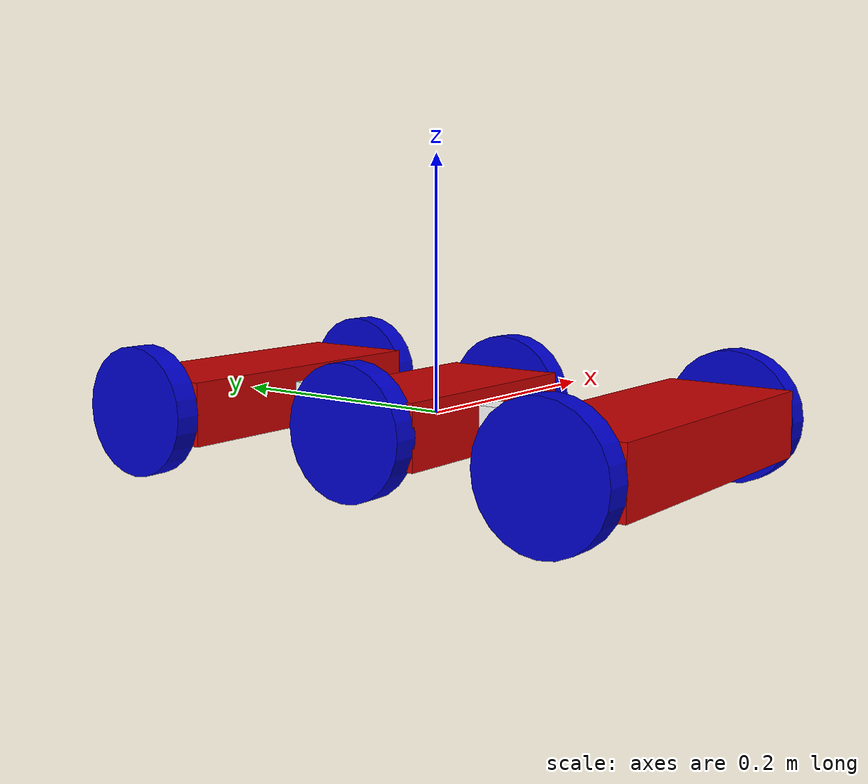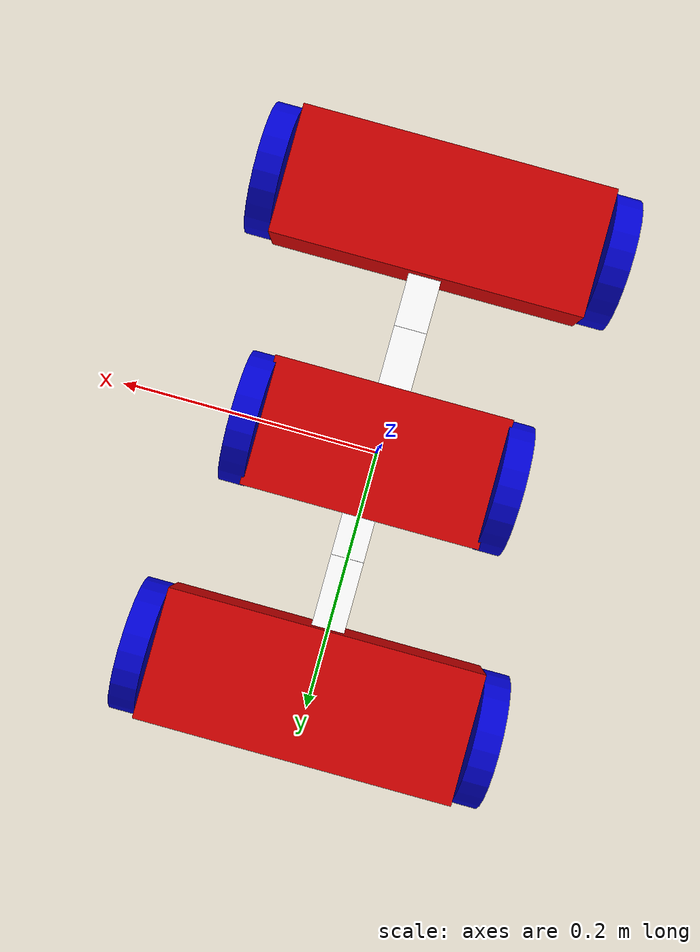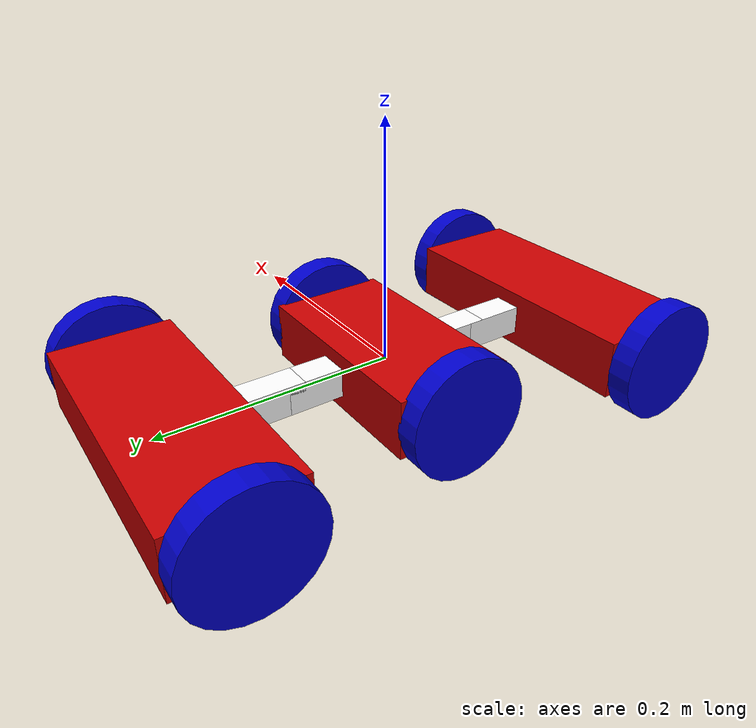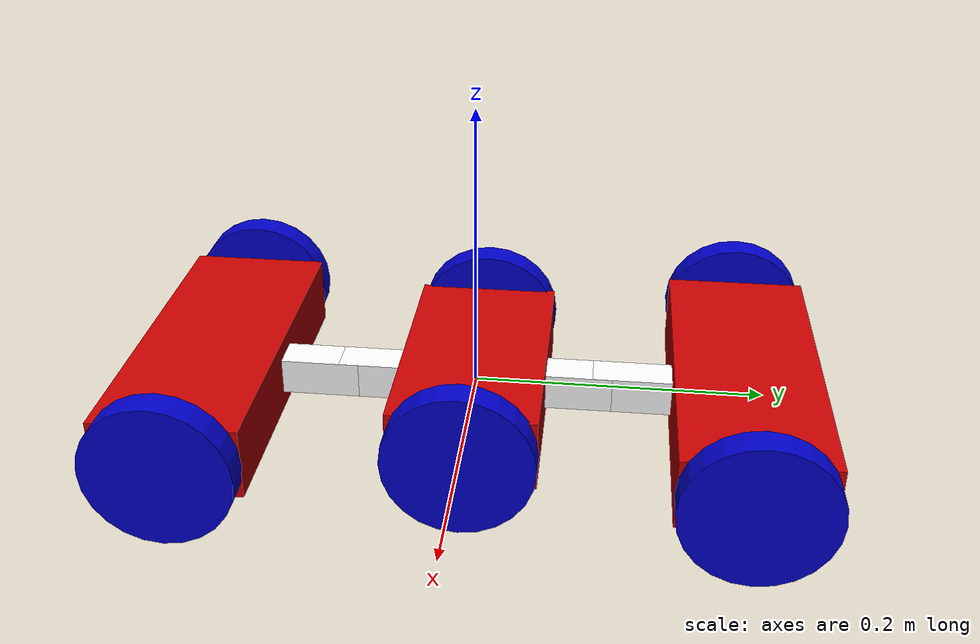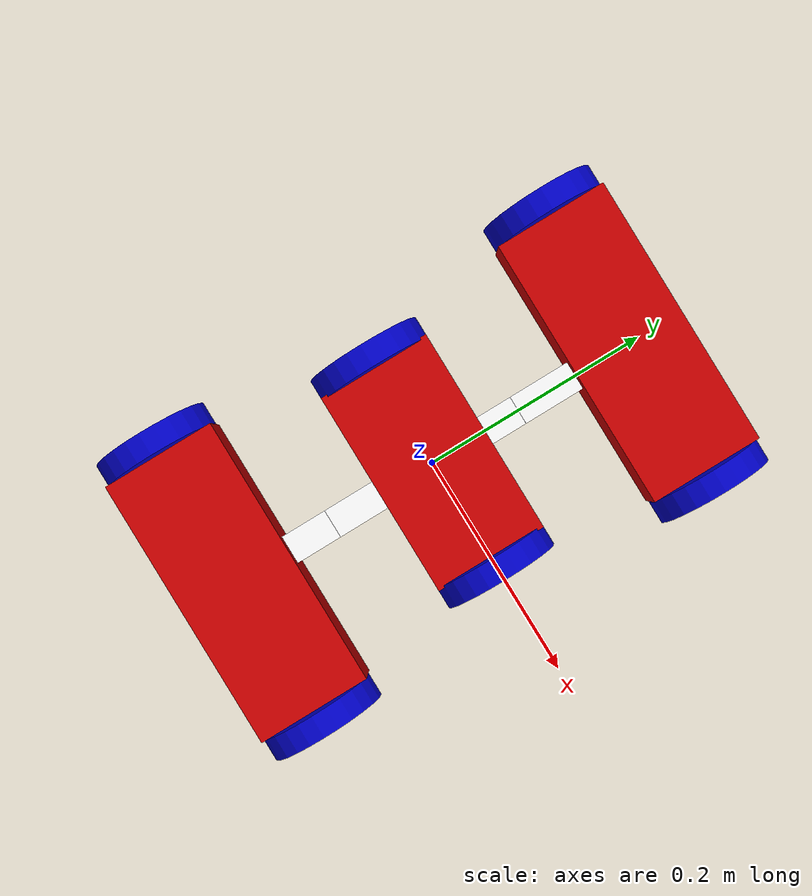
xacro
<?xml version="1.0"?>
<robot xmlns:xacro="http://www.ros.org/wiki/xacro" name="wallcrawler3">
    <!-- Define material (colors) -->
    <material name="blue">
        <color rgba="0 0 0.8 1"/>
    </material>

    <material name="white">
        <color rgba="1 1 1 1"/>
    </material>

    <material name="black">
        <color rgba="0.2 0.2 0.2 1"/>
    </material>

    <material name="red">
        <color rgba="0.8 0 0 1"/>
    </material>

    <!-- Define base link (Choosing center segment) -->
    <link name="base_link">
        <visual>
        <geometry>
            <box size="0.184 0.1 0.05"/>
        </geometry>
        <material name="red"/>
        </visual>
        <collision>
        <geometry>
            <box size="0.184 0.1 0.05"/>
        </geometry>
        </collision>
        <inertial>
        <mass value="0.29"/>
        <inertia ixx="0.001483683" ixy="0.0" ixz="0.00" iyy="0.0004067691" iyz="0.00" izz="0.0011120307"/>
        </inertial>
    </link>

    <!-- Wheels attached to base/central link -->
    <link name="center_right_wheel">
        <visual>
        <geometry>
            <cylinder length="0.02" radius="0.051"/>
        </geometry>
        <origin rpy="0 1.57 0" xyz="0 0.0 0.0"/>
        <material name="blue"/>
        </visual>
        <collision>
      <geometry>
            <cylinder length="0.02" radius="0.051"/>
        </geometry>
        <origin rpy="0 1.57 0" xyz="0 0.0 0.0"/>
        </collision>
        <inertial>
        <origin rpy="0 1.57 0" xyz="0 0.0 0.0"/>
        <mass value="0.57"/>
        <inertia ixx="0.0004272539" ixy="0" ixz="0" iyy="0.000804759" iyz="0.00" izz="0.0004272539"/>
        </inertial>
    </link>

    <joint name="center_right_wheel_joint" type="continuous">
        <axis xyz="1 0 0" rpy="0 0 0"/>
        <parent link="base_link"/>
        <child link="center_right_wheel"/>
        <origin xyz="0.1 0.0 0.0"/>
    </joint>

    <gazebo reference="center_right_wheel">
        <mu1 value="200.0"/>
        <mu2 value="100.0"/>
        <kp value="10000000.0"/>
        <kd value="1.0"/>
    </gazebo>

    <transmission name="center_right_wheel_transmission">
        <type>transmission_interface/SimpleTransmission</type>
        <joint name="center_right_wheel_joint">
            <hardwareInterface>VelocityJointInterface</hardwareInterface>
        </joint>
        <actuator name="center_right_wheel_actuator">
            <mechanicalReduction>7</mechanicalReduction>
            <hardwareInterface>VelocityJointInterface</hardwareInterface>
        </actuator>
    </transmission>

    <link name="center_left_wheel">
        <visual>
        <geometry>
            <cylinder length="0.02" radius="0.051"/>
        </geometry>
        <origin rpy="0 1.57 0" xyz="0 0.0 0.0"/>
        <material name="blue"/>
        </visual>
        <collision>
        <geometry>
            <cylinder length="0.02" radius="0.051"/>
        </geometry>
        <origin rpy="0 1.57 0" xyz="0 0.0 0.0"/>
        </collision>
        <inertial>
        <origin rpy="0 1.57 0" xyz="0 0.0 0.0"/>
        <mass value="0.57"/>
        <inertia ixx="0.0004272539" ixy="0" ixz="0" iyy="0.000804759" iyz="0.00" izz="0.0004272539"/>
        </inertial>
    </link>

    <joint name="center_left_wheel_joint" type="continuous">
        <axis xyz="1 0 0"/>
        <parent link="base_link"/>
        <child link="center_left_wheel"/>
        <origin xyz="-0.1 0.0 0.0"/>
    </joint>

    <gazebo reference="center_left_wheel">
        <mu1 value="200.0"/>
        <mu2 value="100.0"/>
        <kp value="10000000.0"/>
        <kd value="1.0"/>
    </gazebo>

    <transmission name="center_left_wheel_transmission">
        <type>transmission_interface/SimpleTransmission</type>
        <joint name="center_left_wheel_joint">
            <hardwareInterface>VelocityJointInterface</hardwareInterface>
        </joint>
        <actuator name="center_left_wheel_actuator">
            <mechanicalReduction>7</mechanicalReduction>
            <hardwareInterface>VelocityJointInterface</hardwareInterface>
        </actuator>
    </transmission>

    <!-- linkage to segment at the front -->

    <link name="base_to_front_link1">
        <visual>
        <geometry>
            <box size="0.0254 0.0254 0.055"/>
        </geometry>
        <material name="white"/>
        <origin rpy="1.57 0 0" xyz="0 0.01875 0"/>
        </visual>
        <collision>
        <geometry>
            <box size="0.0254 0.0254 0.055"/>
        </geometry>
        <origin rpy="1.57 0 0" xyz="0 0.01875 0"/>
        </collision>
        <inertial>
        <origin rpy="1.57 0 0" xyz="0 0.01875 0"/>
        <mass value="0.054"/>
        <inertia ixx="0.000032190362" ixy="0.00" ixz="0.00" iyy="0.000032190362" iyz="0.00" izz="0.000005852793"/>
        </inertial>

    </link>

    <joint name="b2flink1_to_baselink" type="revolute">
        <axis xyz="0 1 0"/>
        <limit effort="10.0" lower="0.0" upper="0.548" velocity="0.5"/>
        <parent link="base_link"/>
        <child link="base_to_front_link1"/>
        <origin xyz="0 0.05 0"/>
    </joint>

    <link name="front_link2">
        <visual>
        <geometry>
            <box size="0.0254 0.0254 0.055"/>
        </geometry>
        <material name="white"/>
        <origin rpy="1.57 0 0" xyz="0 0.0 0"/>
        </visual>
        <collision>
       <geometry>
            <box size="0.0254 0.0254 0.055"/>
        </geometry>
        <origin rpy="1.57 0 0" xyz="0 0.0 0"/>
        </collision>
        <inertial>
        <origin rpy="1.57 0 0" xyz="0 0.0 0"/>
        <mass value="0.054"/>
        <inertia ixx="0.000032190362" ixy="0.00" ixz="0.00" iyy="0.000032190362" iyz="0.00" izz="0.000005852793"/>
        </inertial>
    </link>

    <joint name="b2flink1_to_link2" type="revolute">
        <axis xyz="1 0 0"/>
        <limit effort="10.0" lower="-1.57" upper="1.57" velocity="0.5"/>
        <parent link="base_to_front_link1"/>
        <child link="front_link2"/>
        <origin xyz="0 0.06 0"/>
    </joint>

        <!-- torsional spring element -->
    <gazebo>
        <plugin name="front_torsional_spring" filename="libgazebo_joint_torsional_spring.so">
            <kx>0.1</kx>
            <set_point>0.0</set_point>
            <joint>b2flink1_to_link2</joint>
        </plugin>
    </gazebo>

        <!-- linkage to segment at the back -->

    <link name="base_to_back_link1">
        <visual>
        <geometry>
            <box size="0.0254 0.0254 0.055"/>
        </geometry>
        <material name="white"/>
        <origin rpy="1.57 0 0" xyz="0 -0.01875 0"/>
        </visual>
        <collision>
        <geometry>
            <box size="0.0254 0.0254 0.055"/>
        </geometry>
        <origin rpy="1.57 0 0" xyz="0 -0.01875 0"/>
        </collision>
        <inertial>
        <origin rpy="1.57 0 0" xyz="0 -0.01875 0"/>
        <mass value="0.054"/>
        <inertia ixx="0.000032190362" ixy="0.00" ixz="0.00" iyy="0.000032190362" iyz="0.00" izz="0.000005852793"/>
        </inertial>
    </link>

    <joint name="b2blink1_to_baselink" type="revolute">
        <axis xyz="0 1 0"/>
        <limit effort="1000.0" lower="0.0" upper="0.548" velocity="0.5"/>
        <parent link="base_link"/>
        <child link="base_to_back_link1"/>
        <origin xyz="0 -0.05 0"/>
    </joint>

    <link name="back_link2">
        <visual>
        <geometry>
            <box size="0.0254 0.0254 0.055"/>
        </geometry>
        <material name="white"/>
        <origin rpy="1.57 0 0" xyz="0 0.0 0"/>
        </visual>
        <collision>
        <geometry>
            <box size="0.0254 0.0254 0.055"/>
        </geometry>
        <origin rpy="1.57 0 0" xyz="0 0.0 0"/>
        </collision>
        <inertial>
         <origin rpy="1.57 0 0" xyz="0 0.0 0"/>
        <mass value="0.054"/>
        <inertia ixx="0.000032190362" ixy="0.00" ixz="0.00" iyy="0.000032190362" iyz="0.00" izz="0.000005852793"/>
        </inertial>
    </link>

    <joint name="b2blink1_to_link2" type="revolute">
        <axis xyz="1 0 0"/>
        <limit effort="10.0" lower="-1.57" upper="1.57" velocity="0.5"/>
        <parent link="base_to_back_link1"/>
        <child link="back_link2"/>
        <origin xyz="0 -0.06 0"/>
    </joint>

        <!-- torsional spring element -->
    <gazebo>
        <plugin name="back_torsional_spring" filename="libgazebo_joint_torsional_spring.so">
            <kx>0.1</kx>
            <set_point>0.0</set_point>
            <joint>b2blink1_to_link2</joint>
        </plugin>
    </gazebo>

    <!-- Front segment -->
    <link name="front_base">
        <visual>
        <geometry>
            <box size="0.244 0.1 0.05"/>
        </geometry>
        <material name="red"/>
        <origin xyz="0 0.05 0"/>
        </visual>
        <collision>
        <geometry>
            <box size="0.244 0.1 0.05"/>
        </geometry>
        <origin xyz="0 0.05 0"/>
        </collision>
        <inertial>
        <origin xyz="0 0.05 0"/>
        <mass value="0.53"/>
        <inertia ixx="0.0023674548" ixy="0" ixz="0" iyy="0.0001199823" iyz="0.00" izz="0.0023411172"/>
        </inertial>
    </link>

    <joint name="link2_to_front_base" type="revolute">
        <axis xyz="0 1 0"/>
        <limit effort="10.0" lower="0.0" upper="0.548" velocity="0.5"/>
        <parent link="front_link2"/>
        <child link="front_base"/>
        <origin xyz="0 0.0275 0"/>
    </joint>

<!-- Wheels attached to front segment -->

    <link name="front_right_wheel">
        <visual>
        <geometry>
            <cylinder length="0.02" radius="0.051"/>
        </geometry>
        <origin rpy="0 1.57 0" xyz="0 0.0 0.0"/>
        <material name="blue"/>
        </visual>
        <collision>
        <geometry>
            <cylinder length="0.02" radius="0.051"/>
        </geometry>
        <origin rpy="0 1.57 0" xyz="0 0.0 0.0"/>
        </collision>
        <inertial>
        <origin rpy="0 1.57 0" xyz="0 0.0 0.0"/>
        <mass value="0.57"/>
        <inertia ixx="0.0004272539" ixy="0" ixz="0" iyy="0.000804759" iyz="0.00" izz="0.0004272539"/>
        </inertial>
    </link>

    <joint name="front_right_wheel_joint" type="continuous">
        <axis xyz="1 0 0"/>
        <parent link="front_base"/>
        <child link="front_right_wheel"/>
        <origin xyz="0.132 0.05 0.0"/>
    </joint>

    <gazebo reference="front_right_wheel">
        <mu1 value="200.0"/>
        <mu2 value="100.0"/>
        <kp value="10.0"/>
        <kd value="1.0"/>
    </gazebo>

    <transmission name="front_right_wheel_transmission">
        <type>transmission_interface/SimpleTransmission</type>
        <joint name="front_right_wheel_joint">
            <hardwareInterface>VelocityJointInterface</hardwareInterface>
        </joint>
        <actuator name="front_right_wheel_actuator">
            <mechanicalReduction>1</mechanicalReduction>
            <hardwareInterface>VelocityJointInterface</hardwareInterface>
        </actuator>
    </transmission>

    <link name="front_left_wheel">
        <visual>
        <geometry>
            <cylinder length="0.02" radius="0.051"/>
        </geometry>
        <origin rpy="0 1.57 0" xyz="0 0.0 0.0"/>
        <material name="blue"/>
        </visual>
        <collision>
        <geometry>
            <cylinder length="0.02" radius="0.051"/>
        </geometry>
        <origin rpy="0 1.57 0" xyz="0 0.0 0.0"/>
        </collision>
        <inertial>
        <origin rpy="0 1.57 0" xyz="0 0.0 0.0"/>
        <mass value="0.57"/>
        <inertia ixx="0.0004272539" ixy="0" ixz="0" iyy="0.000804759" iyz="0.00" izz="0.0004272539"/>
        </inertial>
    </link>

   <joint name="front_left_wheel_joint" type="continuous">
        <axis xyz="1 0 0"/>
        <parent link="front_base"/>
        <child link="front_left_wheel"/>
        <origin xyz="-0.132 0.05 0.0"/>
    </joint>
    <gazebo reference="front_left_wheel">
        <mu1 value="200.0"/>
        <mu2 value="100.0"/>
        <kp value="10.0"/>
        <kd value="1.0"/>
    </gazebo>

    <transmission name="front_left_wheel_transmission">
        <type>transmission_interface/SimpleTransmission</type>
        <joint name="front_left_wheel_joint">
            <hardwareInterface>VelocityJointInterface</hardwareInterface>
        </joint>
        <actuator name="front_left_wheel_actuator">
            <mechanicalReduction>1</mechanicalReduction>
            <hardwareInterface>VelocityJointInterface</hardwareInterface>
        </actuator>
    </transmission>

    <!-- Back segment -->
    <link name="back_base">
        <visual>
        <geometry>
            <box size="0.244 0.1 0.05"/>
        </geometry>
        <material name="red"/>
        <origin xyz="0 -0.05 0"/>
        </visual>
        <collision>
        <geometry>
            <box size="0.244 0.1 0.05"/>
        </geometry>
        <origin xyz="0 -0.05 0"/>
        </collision>
        <inertial>
        <origin xyz="0 -0.05 0"/>
        <mass value="0.53"/>
        <inertia ixx="0.0023674548" ixy="0" ixz="0" iyy="0.0001199823" iyz="0.00" izz="0.0023411172"/>
        </inertial>
    </link>

    <joint name="link2_to_back_base" type="revolute">
        <axis xyz="0 1 0"/>
        <limit effort="1000.0" lower="0.0" upper="0.548" velocity="0.5"/>
        <parent link="back_link2"/>
        <child link="back_base"/>
        <origin xyz="0 -0.0275 0"/>
    </joint>

<!-- Wheels attached to Back segment -->
    <link name="back_right_wheel">
        <visual>
        <geometry>
            <cylinder length="0.02" radius="0.051"/>
        </geometry>
        <origin rpy="0 1.57 0" xyz="0 0.0 0.0"/>
        <material name="blue"/>
        </visual>
        <collision>
        <geometry>
            <cylinder length="0.02" radius="0.051"/>
        </geometry>
        <origin rpy="0 1.57 0" xyz="0 0.0 0.0"/>
        </collision>
        <inertial>
        <origin rpy="0 1.57 0" xyz="0 0.0 0.0"/>
        <mass value="0.57"/>
        <inertia ixx="0.0004272539" ixy="0" ixz="0" iyy="0.000804759" iyz="0.00" izz="0.0004272539"/>
        </inertial>
    </link>

    <gazebo reference="back_right_wheel">
        <mu1 value="200.0"/>
        <mu2 value="100.0"/>
        <kp value="10.0"/>
        <kd value="1.0"/>
    </gazebo>

    <joint name="back_right_wheel_joint" type="continuous">
        <axis xyz="1 0 0"/>
        <parent link="back_base"/>
        <child link="back_right_wheel"/>
        <origin xyz="0.132 -0.05 0.0"/>
    </joint>

    <transmission name="back_right_wheel_transmission">
        <type>transmission_interface/SimpleTransmission</type>
        <joint name="back_right_wheel_joint">
            <hardwareInterface>VelocityJointInterface</hardwareInterface>
        </joint>
        <actuator name="back_right_wheel_actuator">
            <mechanicalReduction>1</mechanicalReduction>
            <hardwareInterface>VelocityJointInterface</hardwareInterface>
        </actuator>
    </transmission>

    <link name="back_left_wheel">
        <visual>
        <geometry>
            <cylinder length="0.02" radius="0.051"/>
        </geometry>
        <origin rpy="0 1.57 0" xyz="0 0.0 0.0"/>
        <material name="blue"/>
        </visual>
        <collision>
        <geometry>
            <cylinder length="0.02" radius="0.051"/>
        </geometry>
        <origin rpy="0 1.57 0" xyz="0 0.0 0.0"/>
        </collision>
        <inertial>
        <origin rpy="0 1.57 0" xyz="0 0.0 0.0"/>
        <mass value="0.57"/>
        <inertia ixx="0.0004272539" ixy="0" ixz="0" iyy="0.000804759" iyz="0.00" izz="0.0004272539"/>
        </inertial>
    </link>

    <joint name="back_left_wheel_joint" type="continuous">
        <axis xyz="1 0 0"/>
        <parent link="back_base"/>
        <child link="back_left_wheel"/>
        <origin xyz="-0.132 -0.05 0.0"/>
    </joint>

    <gazebo reference="back_left_wheel">
        <mu1 value="200.0"/>
        <mu2 value="100.0"/>
        <kp value="10.0"/>
        <kd value="1.0"/>
    </gazebo>

    <transmission name="back_left_wheel_transmission">
        <type>transmission_interface/SimpleTransmission</type>
        <joint name="back_left_wheel_joint">
            <hardwareInterface>VelocityJointInterface</hardwareInterface>
        </joint>
        <actuator name="back_left_wheel_actuator">
            <mechanicalReduction>1</mechanicalReduction>
            <hardwareInterface>VelocityJointInterface</hardwareInterface>
        </actuator>
    </transmission>

    <!-- Transmissions - for all not-fixed joints-->
        <!-- linkages-4 -->
            <!-- base to back link, back link, base to front link, front link : revolute joints-->

        <!-- Wheels-6 -->

    <!-- Gazebo Plugin for ROS Control -->
    <gazebo>
        <plugin name="gazebo_ros_control" filename="libgazebo_ros_control.so">
        <robotNamespace>/</robotNamespace>
        </plugin>
    </gazebo>

</robot>
